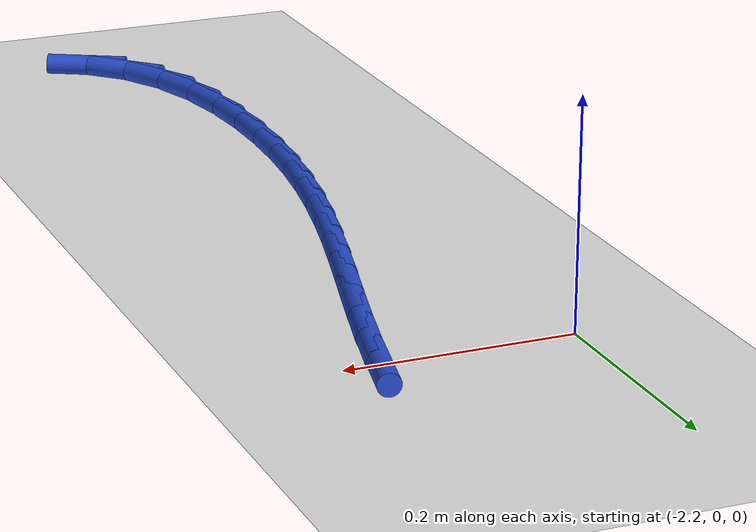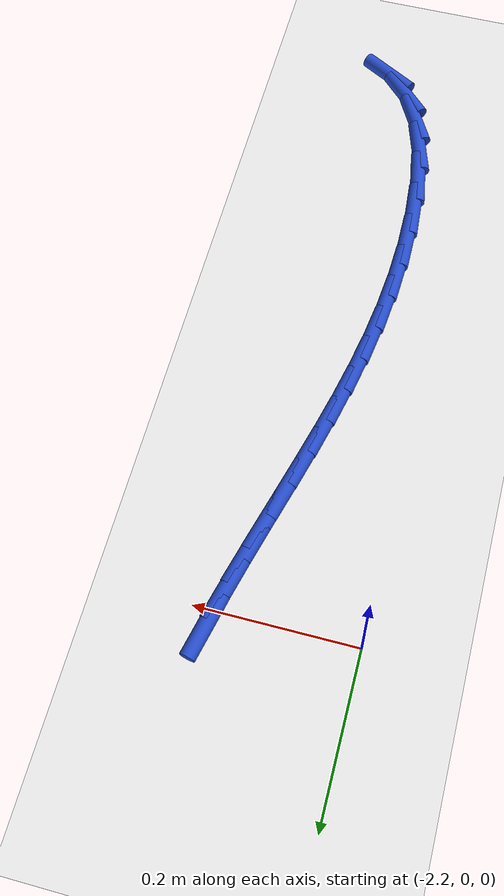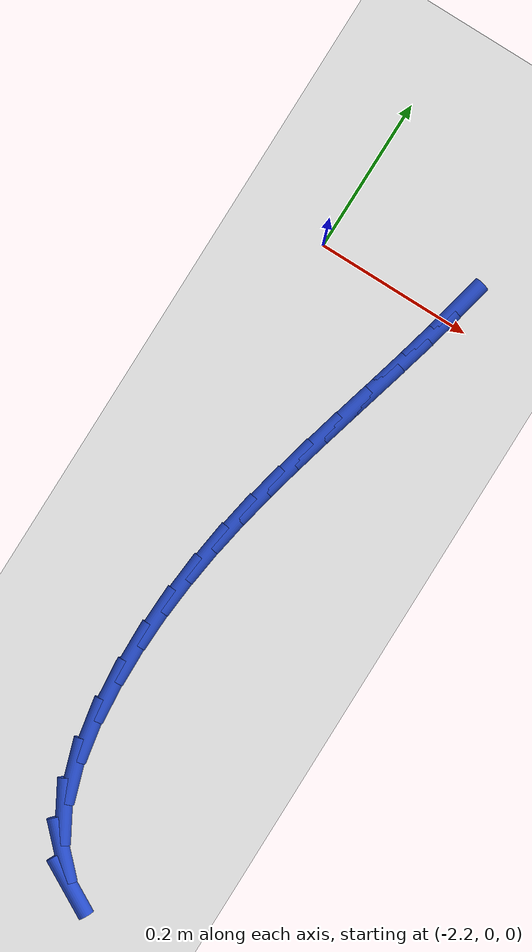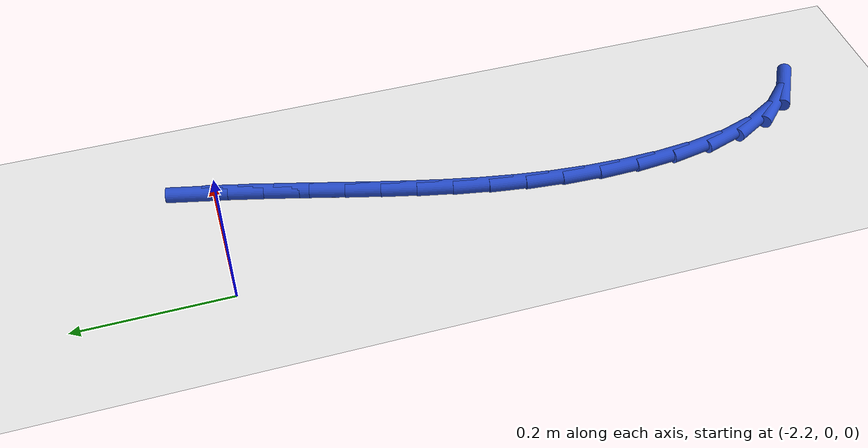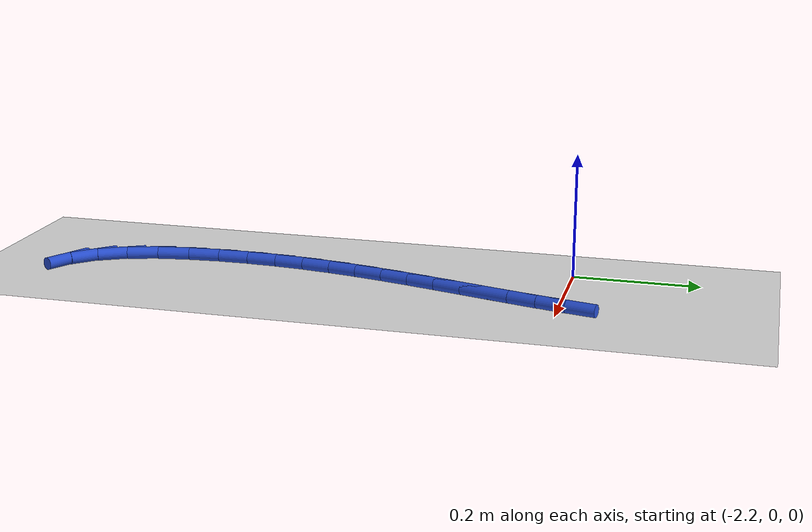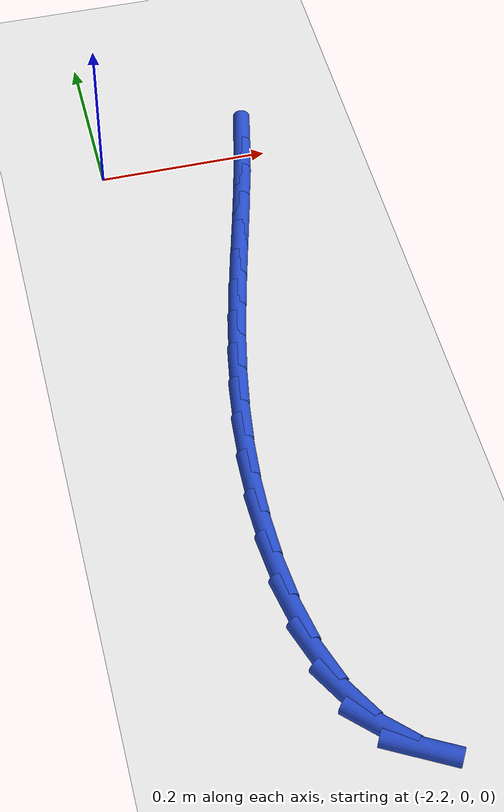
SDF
<sdf version="1.6">
 <world name="default">
  <model name="ground_plane">
   <static>1</static>
   <link name="link">
    <collision name="collision">
     <geometry><plane><normal>0 0 1</normal><size>100 100</size></plane></geometry>
     <surface><friction><ode><mu>100</mu><mu2>50</mu2></ode></friction></surface>
    </collision>
    <visual name="visual">
     <cast_shadows>0</cast_shadows>
     <geometry><plane><normal>0 0 1</normal><size>100 100</size></plane></geometry>
     <material>
      <script><uri>file://media/materials/scripts/gazebo.material</uri><name>Gazebo/WhiteGlow</name></script>
     </material>
    </visual>
   </link>
  </model>
  <model name="line">
   <link name="link_77">
    <pose>-2.022743403401551 0.020959151654867374 0.01 0 1.57 1.3454517303889237</pose>
    <collision name="collision">
     <geometry><cylinder><radius>0.01</radius><length>0.08</length></cylinder></geometry>
    </collision>
    <visual name="visual">
     <material>
      <script><name>Gazebo/Blue</name><uri>file://media/materials/scripts/gazebo.material</uri></script>
     </material>
     <geometry><cylinder><radius>0.01</radius><length>0.08</length></cylinder></geometry>
    </visual>
   </link>
   <link name="link_78">
    <pose>-2.033193946555162 -0.024629018856012173 0.01 0 1.57 1.3235562531275824</pose>
    <collision name="collision">
     <geometry><cylinder><radius>0.01</radius><length>0.08</length></cylinder></geometry>
    </collision>
    <visual name="visual">
     <material>
      <script><name>Gazebo/Blue</name><uri>file://media/materials/scripts/gazebo.material</uri></script>
     </material>
     <geometry><cylinder><radius>0.01</radius><length>0.08</length></cylinder></geometry>
    </visual>
   </link>
   <link name="link_79">
    <pose>-2.0445809172080924 -0.06974306459847367 0.01 0 1.57 1.3096872729367188</pose>
    <collision name="collision">
     <geometry><cylinder><radius>0.01</radius><length>0.08</length></cylinder></geometry>
    </collision>
    <visual name="visual">
     <material>
      <script><name>Gazebo/Blue</name><uri>file://media/materials/scripts/gazebo.material</uri></script>
     </material>
     <geometry><cylinder><radius>0.01</radius><length>0.08</length></cylinder></geometry>
    </visual>
   </link>
   <link name="link_80">
    <pose>-2.056558155332061 -0.11456647542800209 0.01 0 1.57 1.3040031600596171</pose>
    <collision name="collision">
     <geometry><cylinder><radius>0.01</radius><length>0.08</length></cylinder></geometry>
    </collision>
    <visual name="visual">
     <material>
      <script><name>Gazebo/Blue</name><uri>file://media/materials/scripts/gazebo.material</uri></script>
     </material>
     <geometry><cylinder><radius>0.01</radius><length>0.08</length></cylinder></geometry>
    </visual>
   </link>
   <link name="link_81">
    <pose>-2.0687795008987893 -0.15928274120008554 0.01 0 1.57 1.3065583668813472</pose>
    <collision name="collision">
     <geometry><cylinder><radius>0.01</radius><length>0.08</length></cylinder></geometry>
    </collision>
    <visual name="visual">
     <material>
      <script><name>Gazebo/Blue</name><uri>file://media/materials/scripts/gazebo.material</uri></script>
     </material>
     <geometry><cylinder><radius>0.01</radius><length>0.08</length></cylinder></geometry>
    </visual>
   </link>
   <link name="link_82">
    <pose>-2.0808987938799985 -0.2040753517702099 0.01 0 1.57 1.3173132360086597</pose>
    <collision name="collision">
     <geometry><cylinder><radius>0.01</radius><length>0.08</length></cylinder></geometry>
    </collision>
    <visual name="visual">
     <material>
      <script><name>Gazebo/Blue</name><uri>file://media/materials/scripts/gazebo.material</uri></script>
     </material>
     <geometry><cylinder><radius>0.01</radius><length>0.08</length></cylinder></geometry>
    </visual>
   </link>
   <link name="link_83">
    <pose>-2.0925698742474075 -0.2491277969938609 0.01 0 1.57 1.3361301728690023</pose>
    <collision name="collision">
     <geometry><cylinder><radius>0.01</radius><length>0.08</length></cylinder></geometry>
    </collision>
    <visual name="visual">
     <material>
      <script><name>Gazebo/Blue</name><uri>file://media/materials/scripts/gazebo.material</uri></script>
     </material>
     <geometry><cylinder><radius>0.01</radius><length>0.08</length></cylinder></geometry>
    </visual>
   </link>
   <link name="link_84">
    <pose>-2.103446581972739 -0.2946235667265267 0.01 0 1.57 1.3627571048014027</pose>
    <collision name="collision">
     <geometry><cylinder><radius>0.01</radius><length>0.08</length></cylinder></geometry>
    </collision>
    <visual name="visual">
     <material>
      <script><name>Gazebo/Blue</name><uri>file://media/materials/scripts/gazebo.material</uri></script>
     </material>
     <geometry><cylinder><radius>0.01</radius><length>0.08</length></cylinder></geometry>
    </visual>
   </link>
   <link name="link_85">
    <pose>-2.1131827570277113 -0.3407461508236922 0.01 0 1.57 1.396801807938595</pose>
    <collision name="collision">
     <geometry><cylinder><radius>0.01</radius><length>0.08</length></cylinder></geometry>
    </collision>
    <visual name="visual">
     <material>
      <script><name>Gazebo/Blue</name><uri>file://media/materials/scripts/gazebo.material</uri></script>
     </material>
     <geometry><cylinder><radius>0.01</radius><length>0.08</length></cylinder></geometry>
    </visual>
   </link>
   <link name="link_86">
    <pose>-2.1214322393840463 -0.3876790391408458 0.01 0 1.57 1.4377035050534168</pose>
    <collision name="collision">
     <geometry><cylinder><radius>0.01</radius><length>0.08</length></cylinder></geometry>
    </collision>
    <visual name="visual">
     <material>
      <script><name>Gazebo/Blue</name><uri>file://media/materials/scripts/gazebo.material</uri></script>
     </material>
     <geometry><cylinder><radius>0.01</radius><length>0.08</length></cylinder></geometry>
    </visual>
   </link>
   <link name="link_87">
    <pose>-2.1278488690134645 -0.435605721533473 0.01 0 1.57 1.4847107399674022</pose>
    <collision name="collision">
     <geometry><cylinder><radius>0.01</radius><length>0.08</length></cylinder></geometry>
    </collision>
    <visual name="visual">
     <material>
      <script><name>Gazebo/Blue</name><uri>file://media/materials/scripts/gazebo.material</uri></script>
     </material>
     <geometry><cylinder><radius>0.01</radius><length>0.08</length></cylinder></geometry>
    </visual>
   </link>
   <link name="link_88">
    <pose>-2.1320864858876867 -0.4847096878570598 0.01 0 1.57 1.5368758655271666</pose>
    <collision name="collision">
     <geometry><cylinder><radius>0.01</radius><length>0.08</length></cylinder></geometry>
    </collision>
    <visual name="visual">
     <material>
      <script><name>Gazebo/Blue</name><uri>file://media/materials/scripts/gazebo.material</uri></script>
     </material>
     <geometry><cylinder><radius>0.01</radius><length>0.08</length></cylinder></geometry>
    </visual>
   </link>
   <link name="link_89">
    <pose>-2.133798929978433 -0.5351744279670941 0.01 0 1.57 -1.5484308100195299</pose>
    <collision name="collision">
     <geometry><cylinder><radius>0.01</radius><length>0.08</length></cylinder></geometry>
    </collision>
    <visual name="visual">
     <material>
      <script><name>Gazebo/Blue</name><uri>file://media/materials/scripts/gazebo.material</uri></script>
     </material>
     <geometry><cylinder><radius>0.01</radius><length>0.08</length></cylinder></geometry>
    </visual>
   </link>
   <link name="link_90">
    <pose>-2.13263581746486 -0.5871704798725248 0.01 0 1.57 -1.4819187105317202</pose>
    <collision name="collision">
     <geometry><cylinder><radius>0.01</radius><length>0.08</length></cylinder></geometry>
    </collision>
    <visual name="visual">
     <material>
      <script><name>Gazebo/Blue</name><uri>file://media/materials/scripts/gazebo.material</uri></script>
     </material>
     <geometry><cylinder><radius>0.01</radius><length>0.08</length></cylinder></geometry>
    </visual>
   </link>
   <link name="link_91">
    <pose>-2.1279356759733887 -0.639914458980085 0.01 0 1.57 -1.3886133745746572</pose>
    <collision name="collision">
     <geometry><cylinder><radius>0.01</radius><length>0.08</length></cylinder></geometry>
    </collision>
    <visual name="visual">
     <material>
      <script><name>Gazebo/Blue</name><uri>file://media/materials/scripts/gazebo.material</uri></script>
     </material>
     <geometry><cylinder><radius>0.01</radius><length>0.08</length></cylinder></geometry>
    </visual>
   </link>
   <link name="link_92">
    <pose>-2.118518396510336 -0.6910326322574268 0.01 0 1.57 -1.2546566568821467</pose>
    <collision name="collision">
     <geometry><cylinder><radius>0.01</radius><length>0.08</length></cylinder></geometry>
    </collision>
    <visual name="visual">
     <material>
      <script><name>Gazebo/Blue</name><uri>file://media/materials/scripts/gazebo.material</uri></script>
     </material>
     <geometry><cylinder><radius>0.01</radius><length>0.08</length></cylinder></geometry>
    </visual>
   </link>
   <link name="link_93">
    <pose>-2.1031547061765172 -0.738000510367419 0.01 0 1.57 -1.0607758919905677</pose>
    <collision name="collision">
     <geometry><cylinder><radius>0.01</radius><length>0.08</length></cylinder></geometry>
    </collision>
    <visual name="visual">
     <material>
      <script><name>Gazebo/Blue</name><uri>file://media/materials/scripts/gazebo.material</uri></script>
     </material>
     <geometry><cylinder><radius>0.01</radius><length>0.08</length></cylinder></geometry>
    </visual>
   </link>
   <link name="link_94">
    <pose>-2.080615332072747 -0.778293603972934 0.01 0 1.57 -0.7888506084901724</pose>
    <collision name="collision">
     <geometry><cylinder><radius>0.01</radius><length>0.08</length></cylinder></geometry>
    </collision>
    <visual name="visual">
     <material>
      <script><name>Gazebo/Blue</name><uri>file://media/materials/scripts/gazebo.material</uri></script>
     </material>
     <geometry><cylinder><radius>0.01</radius><length>0.08</length></cylinder></geometry>
    </visual>
   </link>
   <link name="link_95">
    <pose>-2.049696587425511 -0.8094265796285923 0.01 0 1.57 -0.500690754912615</pose>
    <collision name="collision">
     <geometry><cylinder><radius>0.01</radius><length>0.08</length></cylinder></geometry>
    </collision>
    <visual name="visual">
     <material>
      <script><name>Gazebo/Blue</name><uri>file://media/materials/scripts/gazebo.material</uri></script>
     </material>
     <geometry><cylinder><radius>0.01</radius><length>0.08</length></cylinder></geometry>
    </visual>
   </link>
  </model>
 </world>
</sdf>
